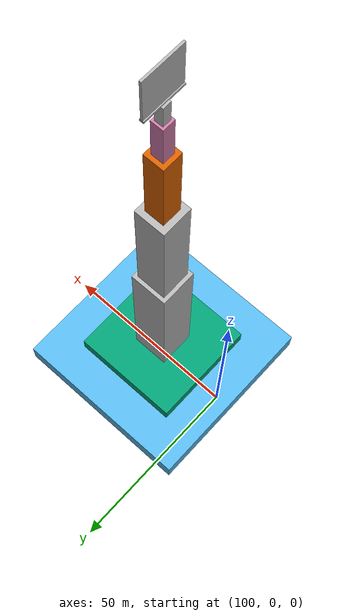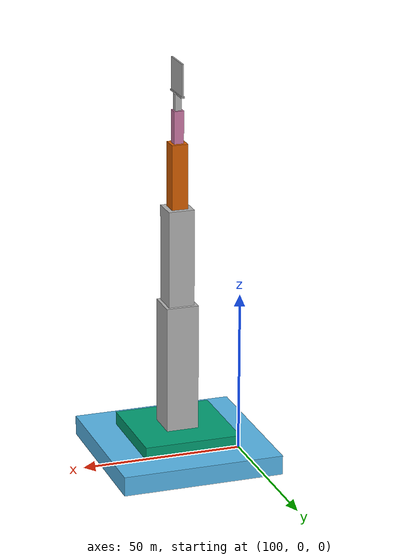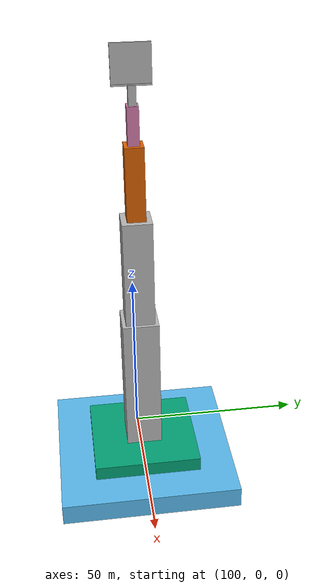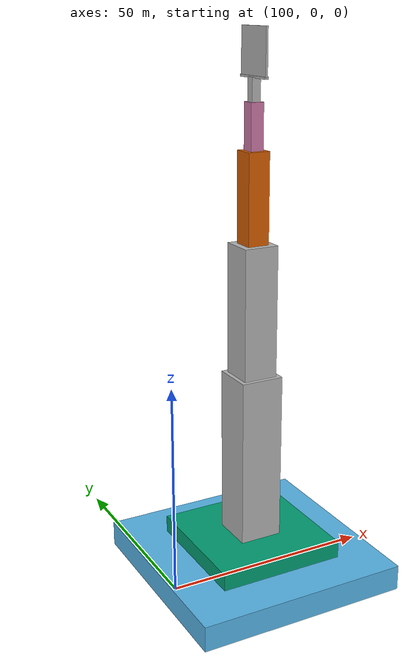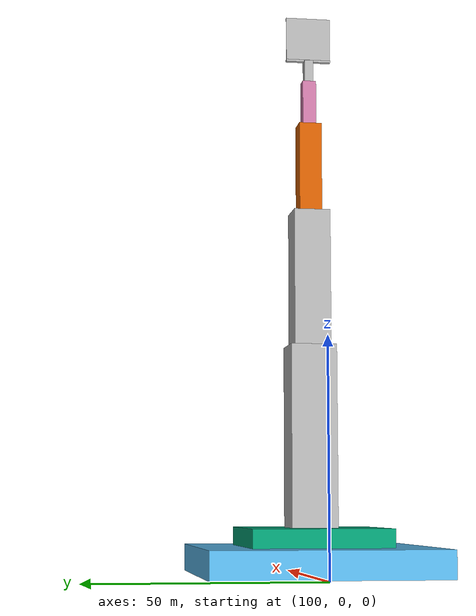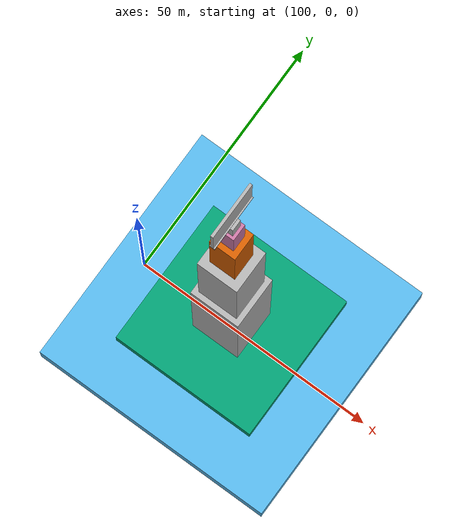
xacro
<?xml version="1.0"?> <!--이건 xml 모델이라는 정의, 그리고 버전 정보도-->

<robot xmlns:xacro="http://www.ros.org/wiki.xacro" name="arduinobot"><!--XML 익스텐션으로 자동완성!! -->
    <!-- xacro 연결, 로봇 이름 정의 -->

    <!--옆에 파일 가져오기-->
    <xacro:include filename="$(find arduinobot_description)/urdf/arduinobot_gazebo.xacro"/>
    <xacro:include filename="$(find arduinobot_description)/urdf/arduinobot_ros2_control.xacro"/>

    <!--inertial makro-->
    <xacro:macro name="default_inertial" params="mass">
        <inertial>
            <mass value="${mass}"/>
            <inertia ixx="10000" ixy="0.0" ixz="0.0"
                     iyy="10000" iyz="0.0"
                     izz="10000"/>
        </inertial>
    </xacro:macro>

    <material name="White">
        <color rgba="0.9 0.9 0.9 1.0"/>
    </material>

    <!--모터와 링크를 연결시키는 태그, number는 조인트 번호가 들어갈 예정-->
    <xacro:macro name="default_transmission" params="number">
        <transmission name="transmissiom_${number}">
            <!--트랜스미션 라이브러리 플러그인-->
            <plugin>transmission_interface/SimpleTransmission</plugin>

            <!--엑추에이터와 조인트의 명과 역할 이름 붙이기-->
            <actuator name="motor_${number}" role="actuactor1"/>
            <joint name="joint_${number}" role="joint1">
                <!--모터의 1도가 링크에서 1도임-->
                <mechanical_reduction>1.0</mechanical_reduction>
            </joint>
        </transmission>
    </xacro:macro>

    <!-- 끝나기 전에 / 가 들어가 있으면 이는 한줄로 끝난다는겨 -->
    <link name="world"/>
    <!-- 위 링크는 이름만 있으면 됨, 모든 링크의 부모, 로봇이 월드에 붙어있게 도와줌 -->

    <link name="base_link"> <!-- 베이스 링크 -->
        <xacro:default_inertial mass="10000.0"/>

        <visual> <!-- 시각적 -->
            <!-- 오리진으로 위치와 방향, 각도rpy, 위치-->
            <origin rpy="0 0 0" xyz="0 0 3.5"/> <!--좌표 수정-->
            <geometry> <!-- 도형 -->
                <!-- mesh 지정 -->
                <box size="50 50 6"/>                <!-- 그리고 스케일 지정, 아니면 너무 큼-->
            </geometry>
        </visual>

        <!--가제보할 때 추가!-->
        <!-- 기본적으로 비주얼과 같은 것을 가져옴-->
        <collision>
            <origin rpy="0 0 0" xyz="0 0 1"/> <!--좌표 수정-->
            <geometry> <!-- 도형 -->
                <!-- mesh 지정 -->
                <box size="0 0 0"/>                 <!-- 그리고 스케일 지정, 아니면 너무 큼-->
            </geometry>
        </collision>
    </link>

    <joint name="virtual_joint" type="fixed"><!-- 월드랑 베이스 링크 연결, 종류는 고정-->
        <parent link="world"/>
        <child link="base_link"/>
        <origin xyz="119.97 0 0" rpy="0 0 ${PI/2}"/>
    </joint>
    <!-- 위에 쓰고 CMake로-->

    <!--여기부터 다음 단계 -->

    <!-- xacro를 쓰는 이유, 변수 지정 가능. 지금은 PI라는 변수를 만든 것-->
    <xacro:property name="PI" value= "3.14159"/>
    <xacro:property name="effort" value= "3000000000.0"/><!--원래 30-->
    <xacro:property name="velocity" value= "10.0"/>

    <!--베이스 플레이트 생성-->
    <link name="base_plate">
        <xacro:default_inertial mass="1000.0"/>

        <visual>
            <origin rpy="0 0 0" xyz="0 0 8"/>
            <geometry>
                <box size="30 30 5"/>                  <!--이번에도 스케일을 똑같이 줄이자-->
            </geometry>
        </visual>

        <collision>
            <origin rpy="0 0 0" xyz="0 0 7"/>
            <geometry>
                <box size="30 30 1"/>                  <!--이번에도 스케일을 똑같이 줄이자-->
            </geometry>
        </collision>
    </link>

    <!--첫 움직이는 조인트! 그래서 type이 revolute-->
    <joint name="joint_1" type="revolute">
        <parent link="base_link"/>
        <child link="base_plate"/>
        <axis xyz="0 0 1"/><!-- z 축이 회전하는 것이다.-->
        <origin rpy="0 0 0" xyz="0 0 0"/><!-- T matrix, 즉 z축으로 0.307 만큼 올라가는 뜻! -->
        <!--조인트 움직임 한계 조절, effort는 토크 -->
        <limit lower="${-2*PI}" upper="${2*PI}" effort="${effort}" velocity="${velocity}"/>
        <!--xacro로 지정한 변수를 집어넣어서 유지보수를 쉽게!! ${변수}로 사용가능. 이때 연산은 안이든 밖이든 상관 없는 듯-->
        <!-- 90 이동 제한이라 PI/2-->

    </joint>

    <!--그다음 강의-->
    <!--urdf 치면 link 자동완성 양식이 나옴-->
    <link name="link_j23">
        <xacro:default_inertial mass="1000.0"/>

        <visual>
            <origin rpy="0 0 0" xyz="0 0 20"/>
            <geometry>
                <box size="10 10 40"/>
            </geometry>
            <material name="LightGrey">
                <color rgba="0.7 0.7 0.7 1.0"/>
            </material>
        </visual>

        <collision>
            <origin rpy="0 0 0" xyz="0 0 15"/> <!-- 회전시켜 배치-->
            <geometry>
                <box size="10 10 20"/>
            </geometry>
        </collision>
    </link>

    <joint name="joint_2" type="revolute">
        <parent link="base_plate"/>
        <child link="link_j23"/>
        <axis xyz="1 0 0"/><!-- x축 회전-->
        <origin rpy="0 0 0" xyz="0 0 10"/><!--회전은 안하지만 평행이동은 했음-->
        <limit lower="${-PI}" upper="${PI}" effort="${effort}" velocity="${velocity}"/>
    </joint>

    <link name="link_j34">
        <xacro:default_inertial mass="1000.0"/>

        <visual>
            <origin rpy="0 0 0" xyz="0 0 15"/> <!-- 회전시켜 배치-->
            <geometry>
                <box size="8 8 30"/>
            </geometry>
            <material name="LightGrey">
                <color rgba="0.7 0.7 0.7 1.0"/>
            </material>
        </visual>

        <collision>
            <origin rpy="0 0 0" xyz="0 0 15"/> <!-- 회전시켜 배치-->
            <geometry>
                <box size="8 8 20"/>
            </geometry>
        </collision>
    </link>

    <joint name="joint_3" type="revolute">
        <parent link="link_j23"/>
        <child link="link_j34"/>
        <axis xyz="1 0 0"/><!-- x축 회전-->
        <origin rpy="0 0 0" xyz="0 0 40"/><!--회전은 안하지만 평행이동은 했음-->
        <limit lower="${-PI}" upper="${PI}" effort="${effort}" velocity="${velocity}"/>
    </joint>

    <link name="link_j45">
        <xacro:default_inertial mass="1000.0"/>

        <visual>
            <origin rpy="0 0 0" xyz="0 0 10"/>
            <geometry>
                <box size="5 5 20"/>
            </geometry>
        </visual>

        <collision>
            <origin rpy="0 0 0" xyz="0 0 10"/>
            <geometry>
                <box size="5 5 15"/>
            </geometry>
        </collision>
    </link>

    <joint name="joint_4" type="revolute">
        <parent link="link_j34"/>
        <child link="link_j45"/>
        <axis xyz="1 0 0"/><!-- x축 회전-->
        <origin rpy="0 0 0" xyz="0 0 30"/><!--회전은 안하지만 평행이동은 했음-->
        <limit lower="${-PI}" upper="${PI}" effort="${effort}" velocity="${velocity}"/>
    </joint>

    <link name="link_j56">
        <xacro:default_inertial mass="500.0"/>

        <visual>
            <origin rpy="0 0 0" xyz="0 0 5"/>
            <geometry>
                <box size="3 3 10"/>
            </geometry>
        </visual>

        <collision>
            <origin rpy="0 0 0" xyz="0 0 5"/>
            <geometry>
                <box size="3 3 7"/>
            </geometry>
        </collision>
    </link>

    <joint name="joint_5" type="revolute">
        <parent link="link_j45"/>
        <child link="link_j56"/>
        <axis xyz="1 0 0"/><!-- x축 회전-->
        <origin rpy="0 0 0" xyz="0 0 20"/><!--회전은 안하지만 평행이동은 했음-->
        <limit lower="${-PI}" upper="${PI}" effort="${effort}" velocity="${velocity}"/>
    </joint>

    <link name="link_j6e">
        <xacro:default_inertial mass="500.0"/>

        <visual>
            <origin rpy="0 0 0" xyz="0 0 10"/>
            <geometry>
                <box size="10 0.5 10"/>
            </geometry>
        </visual>

        <visual>
            <origin rpy="0 0 0" xyz="0 0 2.5"/>
            <geometry>
                <box size="2 2 5"/>
            </geometry>
        </visual>

        <collision>
            <origin rpy="0 0 0" xyz="0 0 10"/>
            <geometry>
                <box size="10 0.5 10"/>
            </geometry>

            <!-- Add Gazebo friction parameters here -->
            <gazebo>
                <material>Gazebo/Blue</material>
                <surface>
                    <contact>
                        <ode>
                        </ode>
                    </contact>
                    <friction>
                        <ode>
                            <mu>100.0</mu>    <!-- Increase this for more friction -->
                            <mu2>100.0</mu2>  <!-- Increase this for more friction -->
                        </ode>
                    </friction>
                </surface>
            </gazebo>
        </collision>

        <visual>
            <origin rpy="0 0 0" xyz="0 0 5"/>
            <geometry>
                <box size="10 1 0.5"/>
            </geometry>
        </visual>

        <collision>
            <origin rpy="0 0 0" xyz="0 0 5"/>
            <geometry>
                <box size="10 1 0.5"/>
            </geometry>
            <material name="White"/>
        </collision>

    </link>

    <joint name="joint_6" type="revolute">
        <parent link="link_j56"/>
        <child link="link_j6e"/>
        <axis xyz="0 1 0"/><!-- y축 회전-->
        <origin rpy="0 0 0" xyz="0 0 10"/><!--회전은 안하지만 평행이동은 했음-->
        <limit lower="${-PI}" upper="${PI}" effort="${effort}" velocity="${velocity}"/>
    </joint>

      <!--트랜스미션 발동, 각 모터와 조인트 연결-->
      <xacro:default_transmission number="1"/>
      <xacro:default_transmission number="2"/>
      <xacro:default_transmission number="3"/>
      <xacro:default_transmission number="4"/>
      <xacro:default_transmission number="5"/>
      <xacro:default_transmission number="6"/>

</robot>

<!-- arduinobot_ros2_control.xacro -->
<robot name="arduinobot" xmlns:xacro="http://www.ros.org/wiki.xacro">

    <xacro:property name="PI" value= "3.14159"/>
    <xacro:property name="effort" value= "30.0"/>
    <xacro:property name="velocity" value= "10.0"/>

    <!-- 로스2 제어 태그-->
    <ros2_control name="RobotSystem" type="system">
        <hardware>
            <!--가제보 하드웨어 플러그인-->
            <plugin>gazebo_ros2_control/GazeboSystem</plugin>
        </hardware>

        <joint name="joint_1">
            <!-- 하드웨어 명령 보내는 태그-->
            <command_interface name="position">
                <!--파라미터, 최대 90, 최소 -90, 두배로 늘리기-->
                <param name="max">${2*PI}</param>
                <param name="min">-${2*PI}</param>
            </command_interface>
            <!--하드웨어에서 명령 읽기-->
            <state_interface name="position"/>
        </joint>

        <joint name="joint_2">
            <!-- 하드웨어 명령 보내는 태그-->
            <command_interface name="position">
                <param name="max">${PI}</param>
                <param name="min">-${PI}</param>
            </command_interface>
            <!--하드웨어에서 명령 읽기-->
            <state_interface name="position"/>
        </joint>

        <joint name="joint_3">
            <!-- 하드웨어 명령 보내는 태그-->
            <command_interface name="position">
                <param name="max">${PI}</param>
                <param name="min">-${PI}</param>
            </command_interface>
            <!--하드웨어에서 명령 읽기-->
            <state_interface name="position"/>
        </joint>

        <joint name="joint_4">
            <!-- 하드웨어 명령 보내는 태그-->
            <command_interface name="position">
                <param name="max">${PI}</param>
                <param name="min">-${PI}</param>
            </command_interface>
            <!--하드웨어에서 명령 읽기-->
            <state_interface name="position"/>
        </joint>

        <joint name="joint_5">
            <!-- 하드웨어 명령 보내는 태그-->
            <command_interface name="position">
                <param name="max">${PI}</param>
                <param name="min">-${PI}</param>
            </command_interface>
            <!--하드웨어에서 명령 읽기-->
            <state_interface name="position"/>
        </joint>

        <joint name="joint_6">
            <!-- 하드웨어 명령 보내는 태그-->
            <command_interface name="position">
                <param name="max">${PI}</param>
                <param name="min">-${PI}</param>
            </command_interface>
            <!--하드웨어에서 명령 읽기-->
            <state_interface name="position"/>
        </joint>

    </ros2_control>

</robot>
